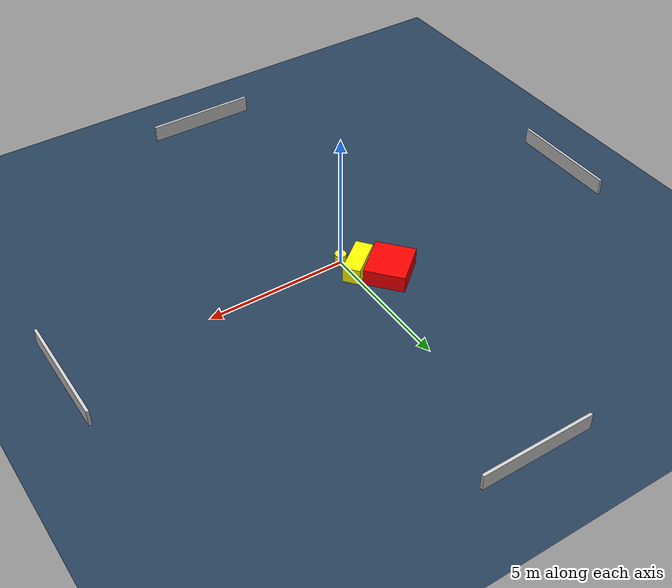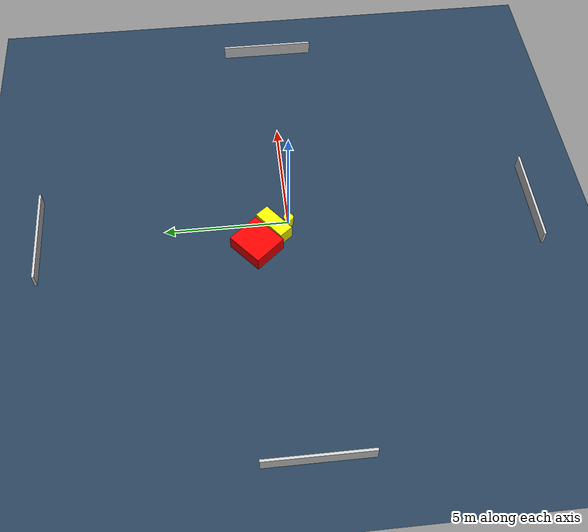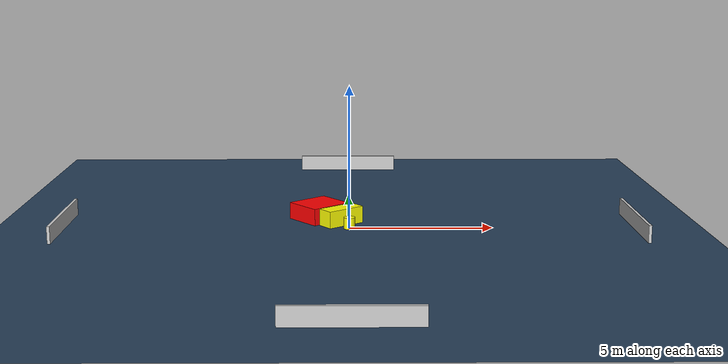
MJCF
<?xml version="1.0" ?>
<mujoco model="generated_environment">
  <option timestep="0.01" integrator="RK4" cone="elliptic"/>
  <default>
    <geom density="1"/>
  </default>
  <asset>
    <texture builtin="gradient" height="3072" name="skybox" rgb1="0.3 0.5 0.7" rgb2="0 0 0" type="skybox" width="512"/>
    <texture builtin="checker" height="300" name="groundplane" rgb1="0.2 0.3 0.4" rgb2="0.1 0.2 0.3" type="2d" width="300"/>
    <material name="groundplane" reflectance="0.2" texrepeat="5 5" texture="groundplane"/>
  </asset>
  <worldbody>
    <light dir="0 0 -1" directional="true" pos="0 0 1.5"/>
    <geom condim="3" friction="0.5 0.005 0.001" material="groundplane" name="floor" pos="0 0 0" size="0 0 0.05" type="plane"/>
    <body name="walls">
      <geom name="wall_1" condim="4" pos="-10.0 0.0 0.3" rgba="0.800000011920929 0.800000011920929 0.800000011920929 1.0" size="0.05 2.0 0.3" type="box"/>
      <geom name="wall_2" condim="4" pos="10.0 0.0 0.3" rgba="0.800000011920929 0.800000011920929 0.800000011920929 1.0" size="0.05 2.0 0.3" type="box"/>
      <geom name="wall_3" condim="4" pos="0.0 -10.0 0.3" rgba="0.800000011920929 0.800000011920929 0.800000011920929 1.0" size="2.0 0.05 0.3" type="box"/>
      <geom name="wall_4" condim="4" pos="0.0 10.0 0.3" rgba="0.800000011920929 0.800000011920929 0.800000011920929 1.0" size="2.0 0.05 0.3" type="box"/>
    </body>
    <body name="robot">
      <joint name="joint_x" type="slide" pos="0 0 0" axis="1 0 0"/>
      <joint name="joint_y" type="slide" pos="0 0 0" axis="0 1 0"/>
      <geom name="robot" type="cylinder" pos="0.0 0.0 0.2" size="0.2 0.2 0.0" mass="5.0" friction="1.0 0.005 0.0001" condim="4" rgba="1.0 1.0 0.0 1.0"/>
    </body>
    <body name="obstacle_1_movable">
      <geom name="obstacle_1_movable" condim="4" pos="-0.2868530933384719 0.6157928676318307 0.3" euler="0 0 307.9793189988876" friction="0.0 0.005 0.001" rgba="1.0 1.0 0.0 1.0" size="0.30553710057721845 0.7251752294439857 0.3" type="box" mass="0.1"/>
      <joint type="free"/>
    </body>
    <body name="obstacle_2_static">
      <geom name="obstacle_2_static" condim="4" pos="-1.0743044207858274 1.3639683315494355 0.3" euler="0 0 130.2385849463638" friction="0.0 0.005 0.001" rgba="1.0 0.0 0.0 1.0" size="0.710024182685729 0.7839581755197071 0.3" type="box"/>
    </body>
  </worldbody>
  <actuator>
    <motor name="actuator_x" joint="joint_x" gear="1" ctrlrange="-1 1"/>
    <motor name="actuator_y" joint="joint_y" gear="1" ctrlrange="-1 1"/>
  </actuator>
</mujoco>
